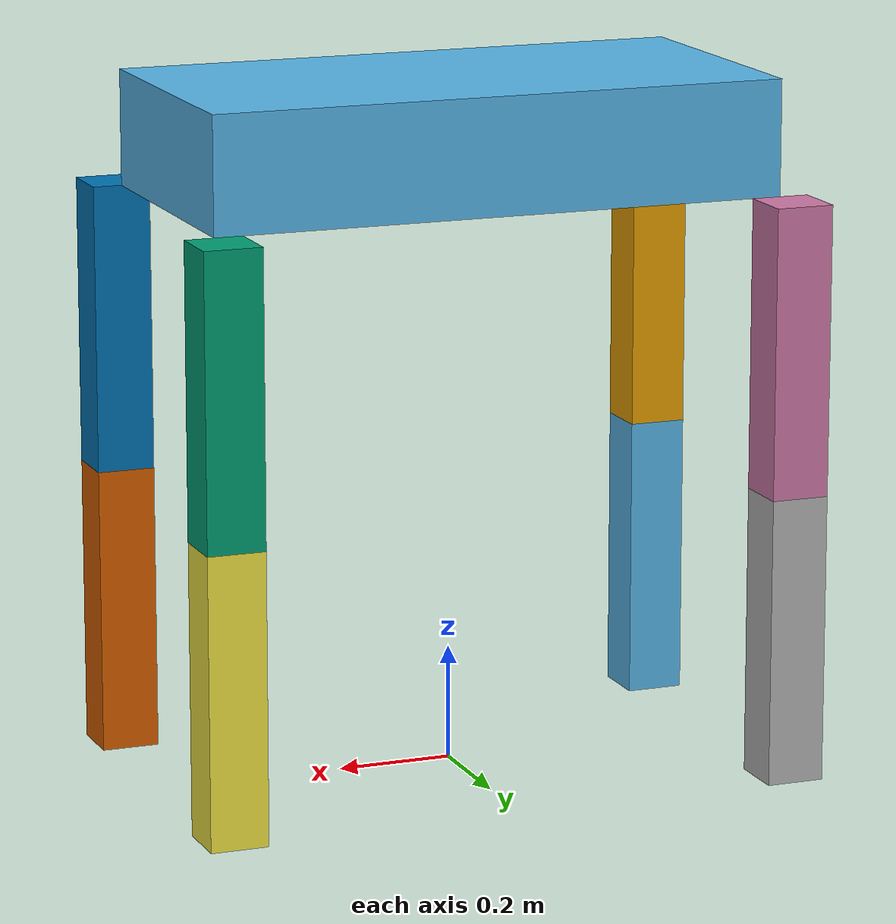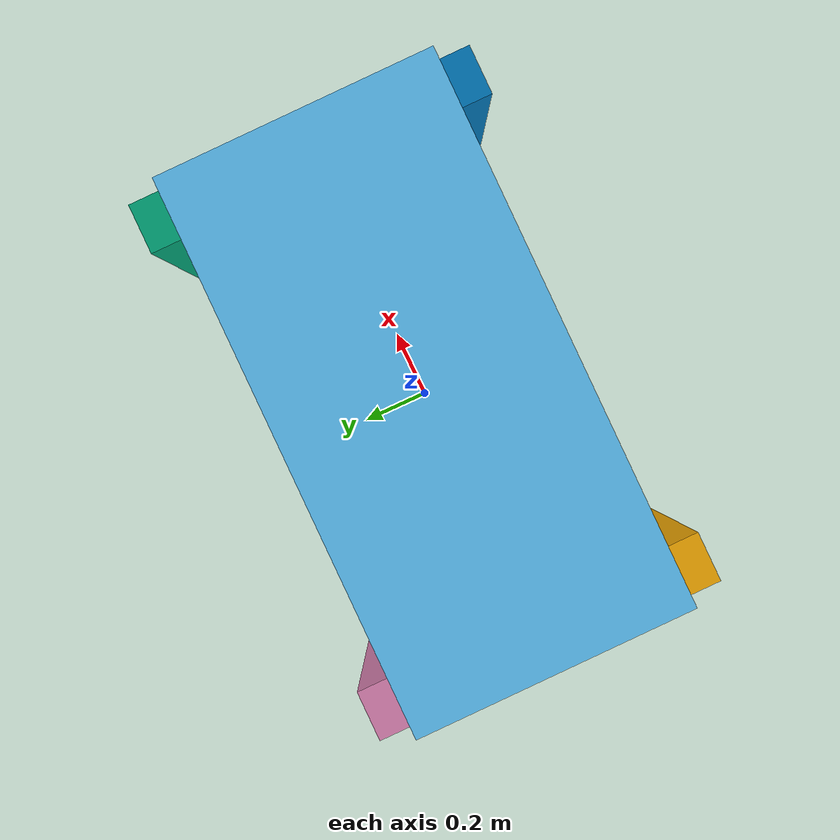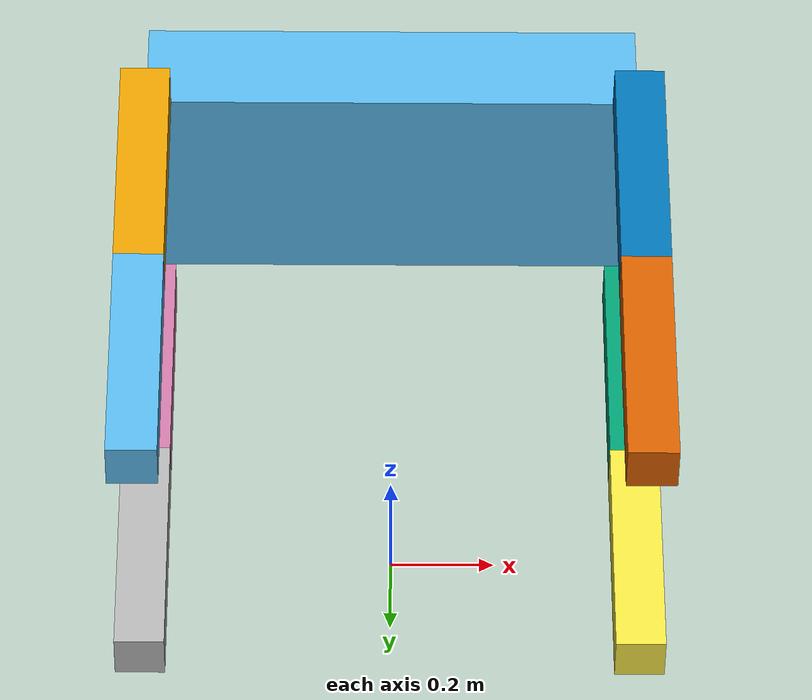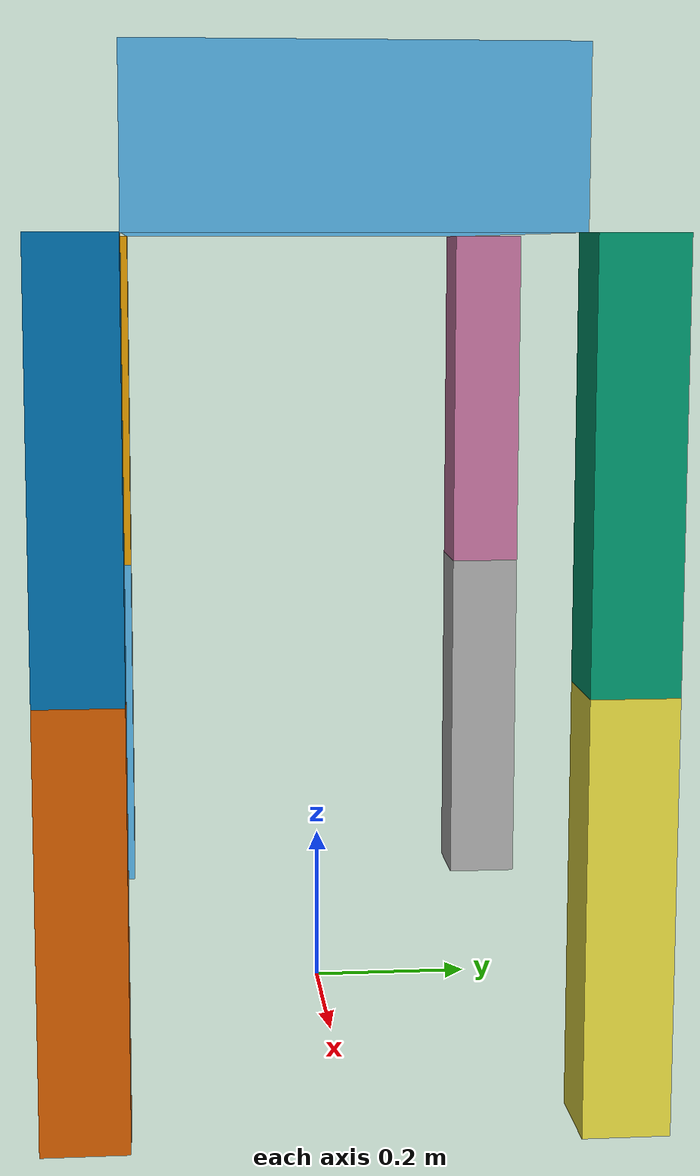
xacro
<?xml version="1.0"?>
<robot name="quadruped" xmlns:xacro="http://ros.org/wiki/xacro">

    <xacro:property name="M_PI" value="3.14159"/>

    <gazebo>
	<plugin name="gazebo_ros_control" filename="libgazebo_ros_control.so">
	    <robotNamespace>/</robotNamespace>
	    </plugin>
	</gazebo>

    <xacro:property name="body_length" value="1.0" />
    <xacro:property name="body_width" value="0.5" />
    <xacro:property name="body_height" value="0.2" />
    <xacro:property name="leg_section_length" value="0.5" />
    <xacro:property name="leg_section_width" value="0.1" />
    <xacro:property name="leg_section_length" value="0.5" />

    <link name="base_link"/>

    <joint name="base_chassis_joint" type="fixed">
            <origin xyz="0 0 ${leg_section_length * 2 +body_height/2}" rpy="0 0 0" />
            <parent link="base_link" />
            <child link="body_link" />
    </joint>

    <link name="body_link">
	    	<inertial>
		    <mass value="5.0" />
		    <origin xyz="-0.000710 -0.000186 0.5" rpy="0 0 0"/>
		    <inertia ixx="3.126061"  ixy="-0.032687" ixz="-0.086662"
                         iyx="-0.032687" iyy="13.356772" iyz="0.000468"
                         izx="-0.086662" izy="0.000468"  izz="15.218700" />
	    	</inertial>
		<collision>
		    <geometry>
			<box size="${body_length} ${body_width} ${body_height}" />
		    </geometry>
		</collision>
		<visual>
		    <origin xyz="0 0 0" rpy="0 0 0" />
		    <geometry>
			<box size="${body_length} ${body_width} ${body_height}" />
		    </geometry>
		</visual>
     </link>

     <gazebo reference="body_link">
			<mu1 value="0.3"/>
			<mu2 value="0.3"/>
			<kp value="10000000.0" />
			<kd value="1.0" />
			<fdir1 value="1 0 0"/>
     </gazebo>

    <xacro:macro name="leg" params="prefix longitudinal_reflect traverse_reflect">

        <joint name="${prefix}_hip_joint" type="continuous">
            <origin xyz="${longitudinal_reflect*body_length/2} ${traverse_reflect*(body_width + leg_section_width)/2} ${-body_height/2}" rpy="0 0 ${traverse_reflect*1.57}" />
            <parent link="body_link" />
            <child link="${prefix}_upper_leg" />
        </joint>

	<transmission name="simple_trans">
	  <type>transmission_interface/SimpleTransmission</type>
  	  <joint name="${prefix}_hip_joint">
    		<hardwareInterface>EffortJointInterface</hardwareInterface>
	  </joint>
  	  <actuator name="${prefix}_hip_motor">
    	     <mechanicalReduction>1</mechanicalReduction>
    	     <hardwareInterface>EffortJointInterface</hardwareInterface>
  	 </actuator>
        </transmission>

        <link name="${prefix}_upper_leg">
		<inertial>
		    <mass value="1.0" />
		    <inertia ixx="0.115329"  ixy="-0.000009" ixz="0.000007"
                             iyx="-0.000009"  iyy="0.194172" iyz="0.000002"
                             izx="0.000007" izy="0.000002" izz="0.309399" />
		    </inertial>
	         <collision>
		    <origin xyz="0 0 ${-leg_section_length/2}" rpy="0 0 0" />
		    <geometry>
				<box size="0.1 0.1 ${leg_section_length}" />
		    </geometry>
		</collision>
		<visual>
                    <origin xyz="0 0 ${-leg_section_length/2}" rpy="0 0 0" />
		    <geometry>
			<box size="0.1 0.1 ${leg_section_length}" />
		    </geometry>
		</visual>
	</link>
        <gazebo reference="${prefix}_upper_leg">
		<mu1 value="0.3"/>
		<mu2 value="0.3"/>
		<kp value="10000000.0" />
		<kd value="1.0" />
		<fdir1 value="1 0 0"/>
        </gazebo>

        <joint name="${prefix}_knee_joint" type="continuous">
            <origin xyz="0 0 ${-leg_section_length}" rpy="0 0 0" />
            <parent link="${prefix}_upper_leg" />
            <child link="${prefix}_lower_leg" />
        </joint>

	<transmission name="simple_trans">
	  <type>transmission_interface/SimpleTransmission</type>
  	  <joint name="${prefix}_knee_joint">
    		<hardwareInterface>EffortJointInterface</hardwareInterface>
	  </joint>
  	  <actuator name="${prefix}_knee_motor">
    	     <mechanicalReduction>1</mechanicalReduction>
    	     <hardwareInterface>EffortJointInterface</hardwareInterface>
  	 </actuator>
        </transmission>

        <link name="${prefix}_lower_leg">
		<inertial>
		    <mass value="1.0" />
		    <inertia ixx="0.115329"  ixy="-0.000009" ixz="0.000007"
                             iyx="-0.000009"  iyy="0.194172" iyz="0.000002"
                             izx="0.000007" izy="0.000002" izz="0.309399" />
		    </inertial>
	         <collision>
		    <origin xyz="0 0 ${-leg_section_length/2}" rpy="0 0 0" />
		    <geometry>
		        <box size="0.1 0.1 ${leg_section_length}" />
		    </geometry>
		</collision>
		<visual>
                    <origin xyz="0 0 ${-leg_section_length/2}" rpy="0 0 0" />
		    <geometry>
			<box size="0.1 0.1 ${leg_section_length}" />
		    </geometry>
		</visual>
	</link>

    </xacro:macro>

    <xacro:leg prefix="forward_right" longitudinal_reflect="1"  traverse_reflect="1"  />
    <xacro:leg prefix="forward_left"  longitudinal_reflect="1"  traverse_reflect="-1" />
    <xacro:leg prefix="rear_right"    longitudinal_reflect="-1" traverse_reflect="1"  />
    <xacro:leg prefix="rear_left"     longitudinal_reflect="-1" traverse_reflect="-1" />
</robot>
